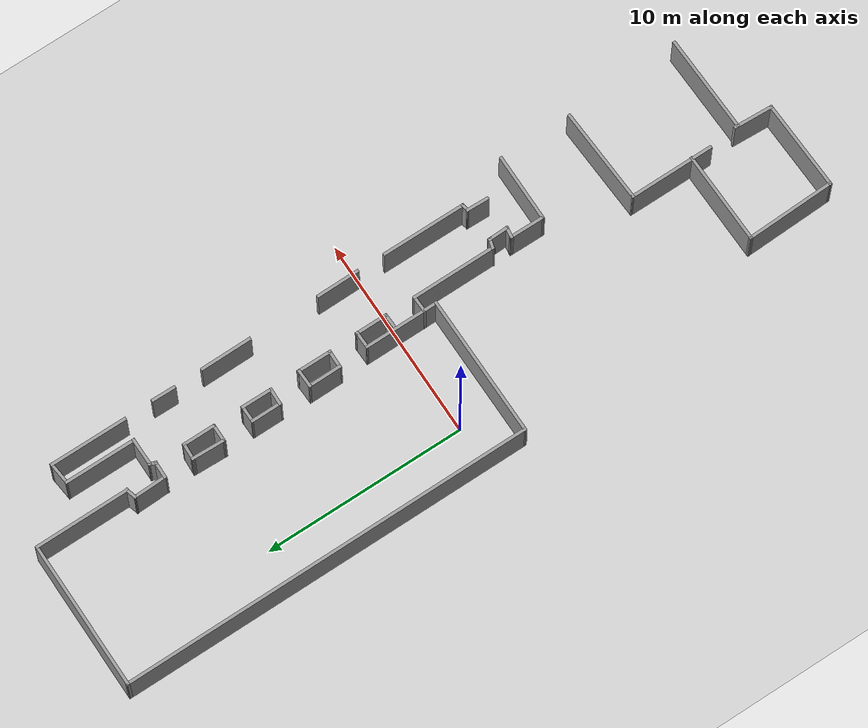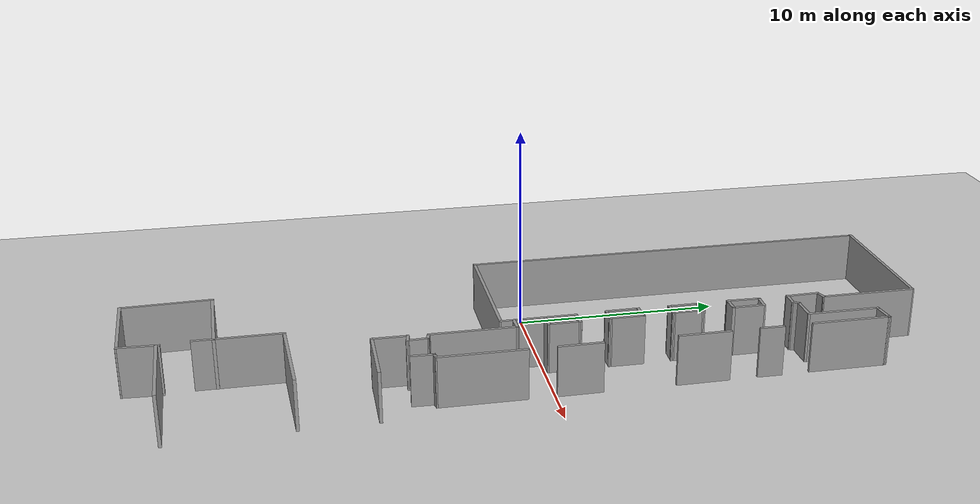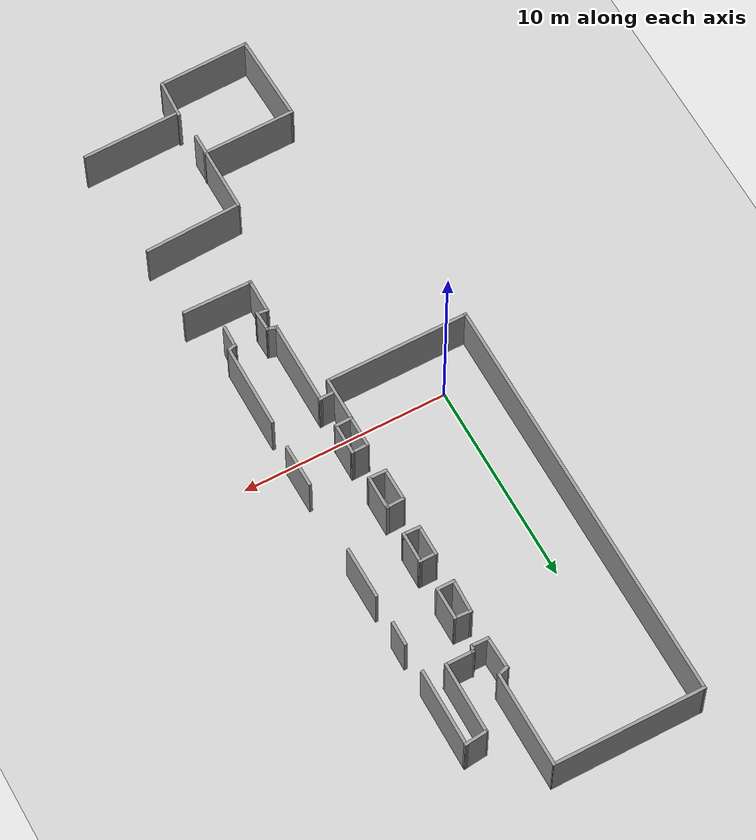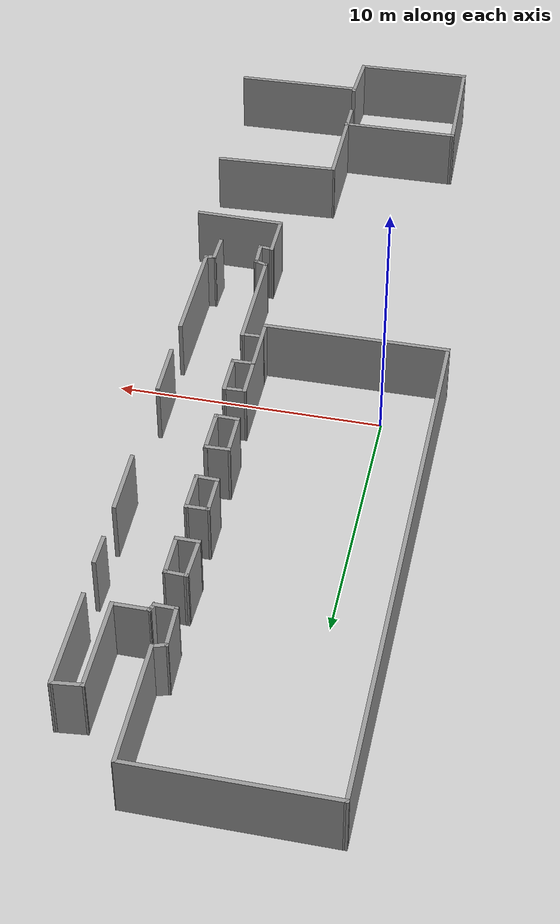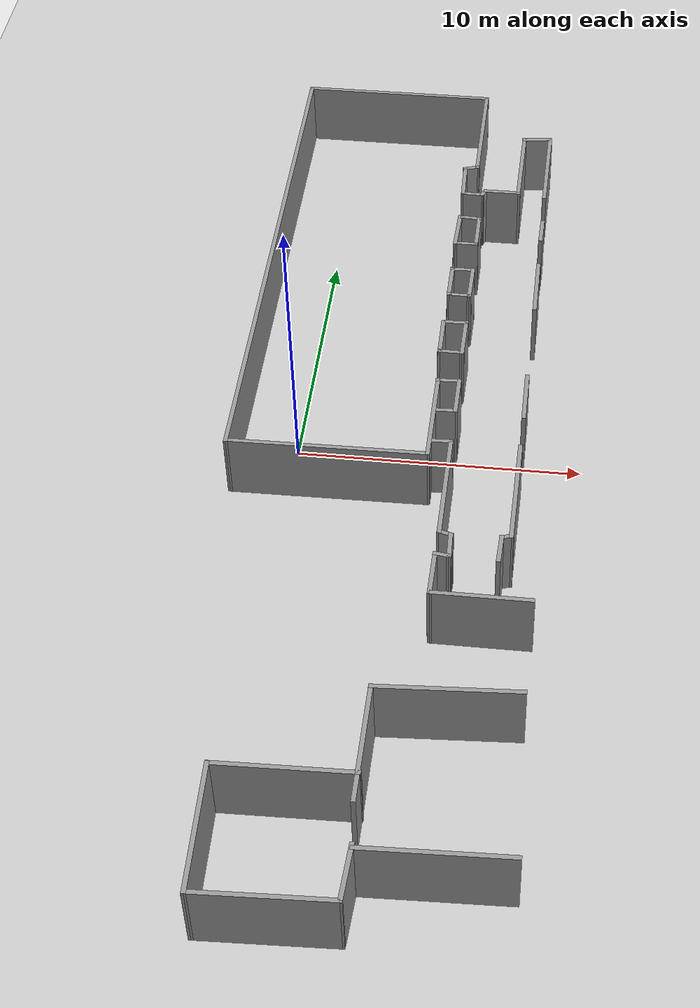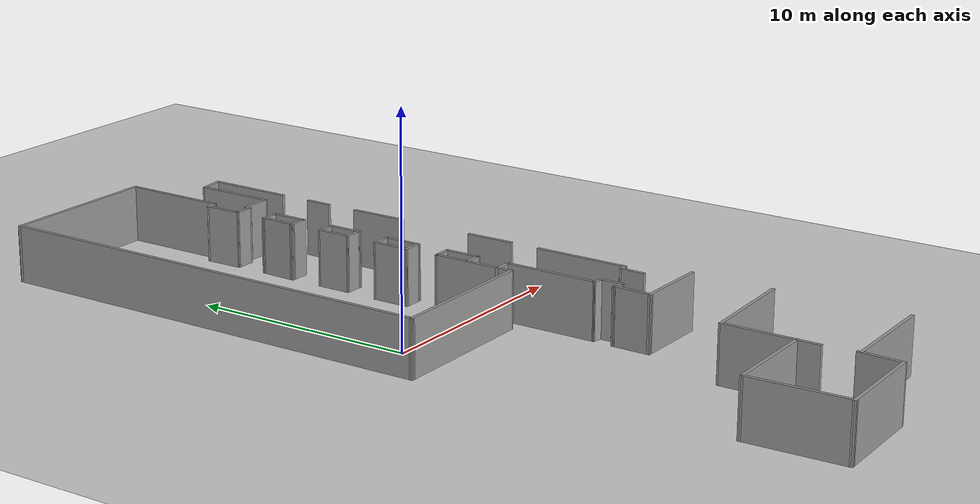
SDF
<sdf version="1.7">
 <world name="default">
  <model name="ground_plane">
   <static>1</static>
   <link name="link">
    <collision name="collision">
     <geometry><plane><normal>0 0 1</normal><size>100 100</size></plane></geometry>
     <surface>
      <contact><collide_bitmask>65535</collide_bitmask></contact>
      <friction><ode><mu>100</mu><mu2>50</mu2></ode></friction>
     </surface>
    </collision>
    <visual name="visual">
     <cast_shadows>0</cast_shadows>
     <geometry><plane><normal>0 0 1</normal><size>100 100</size></plane></geometry>
     <material>
      <script><uri>file://media/materials/scripts/gazebo.material</uri><name>Gazebo/Grey</name></script>
     </material>
    </visual>
   </link>
  </model>
  <model name="lab_world">
   <pose>21.9614 -0.359885 0 0 0 -1.57</pose>
   <link name="Wall_100">
    <collision name="Wall_100_Collision">
     <geometry><box><size>3.75 0.15 2.5</size></box></geometry>
     <pose>0 0 1.25 0 -0 0</pose>
    </collision>
    <visual name="Wall_100_Visual">
     <pose>0 0 1.25 0 -0 0</pose>
     <geometry><box><size>3.75 0.15 2.5</size></box></geometry>
     <material>
      <script><uri>file://media/materials/scripts/gazebo.material</uri><name>Gazebo/Grey</name></script>
      <ambient>1 1 1 1</ambient>
     </material>
     <meta><layer>0</layer></meta>
    </visual>
    <pose>-0.265152 -17.1604 0 0 -0 3.14159</pose>
   </link>
   <link name="Wall_103">
    <collision name="Wall_103_Collision">
     <geometry><box><size>0.89647 0.15 2.5</size></box></geometry>
     <pose>0 0 1.25 0 -0 0</pose>
    </collision>
    <visual name="Wall_103_Visual">
     <pose>0 0 1.25 0 -0 0</pose>
     <geometry><box><size>0.89647 0.15 2.5</size></box></geometry>
     <material>
      <script><uri>file://media/materials/scripts/gazebo.material</uri><name>Gazebo/Grey</name></script>
      <ambient>1 1 1 1</ambient>
     </material>
     <meta><layer>0</layer></meta>
    </visual>
    <pose>-2.07624 -16.7874 0 0 -0 1.6005</pose>
   </link>
   <link name="Wall_104">
    <collision name="Wall_104_Collision">
     <geometry><box><size>1.6335 0.15 2.5</size></box></geometry>
     <pose>0 0 1.25 0 -0 0</pose>
    </collision>
    <visual name="Wall_104_Visual">
     <pose>0 0 1.25 0 -0 0</pose>
     <geometry><box><size>1.6335 0.15 2.5</size></box></geometry>
     <material>
      <script><uri>file://media/materials/scripts/gazebo.material</uri><name>Gazebo/Grey</name></script>
      <ambient>1 1 1 1</ambient>
     </material>
     <meta><layer>0</layer></meta>
    </visual>
    <pose>-1.34557 -16.4143 0 0 -0 0</pose>
   </link>
   <link name="Wall_105">
    <collision name="Wall_105_Collision">
     <geometry><box><size>0.874865 0.15 2.5</size></box></geometry>
     <pose>0 0 1.25 0 -0 0</pose>
    </collision>
    <visual name="Wall_105_Visual">
     <pose>0 0 1.25 0 -0 0</pose>
     <geometry><box><size>0.874865 0.15 2.5</size></box></geometry>
     <material>
      <script><uri>file://media/materials/scripts/gazebo.material</uri><name>Gazebo/Grey</name></script>
      <ambient>1 1 1 1</ambient>
     </material>
     <meta><layer>0</layer></meta>
    </visual>
    <pose>-0.592319 -16.7765 0 0 -0 -1.53906</pose>
   </link>
   <link name="Wall_107">
    <collision name="Wall_107_Collision">
     <geometry><box><size>0.886808 0.15 2.5</size></box></geometry>
     <pose>0 0 1.25 0 -0 0</pose>
    </collision>
    <visual name="Wall_107_Visual">
     <pose>0 0 1.25 0 -0 0</pose>
     <geometry><box><size>0.886808 0.15 2.5</size></box></geometry>
     <material>
      <script><uri>file://media/materials/scripts/gazebo.material</uri><name>Gazebo/Grey</name></script>
      <ambient>1 1 1 1</ambient>
     </material>
     <meta><layer>0</layer></meta>
    </visual>
    <pose>0.902681 -16.7938 0 0 -0 1.60204</pose>
   </link>
   <link name="Wall_109">
    <collision name="Wall_109_Collision">
     <geometry><box><size>4.25 0.15 2.5</size></box></geometry>
     <pose>0 0 1.25 0 -0 0</pose>
    </collision>
    <visual name="Wall_109_Visual">
     <pose>0 0 1.25 0 -0 0</pose>
     <geometry><box><size>4.25 0.15 2.5</size></box></geometry>
     <material>
      <script><uri>file://media/materials/scripts/gazebo.material</uri><name>Gazebo/Grey</name></script>
      <ambient>1 1 1 1</ambient>
     </material>
     <meta><layer>0</layer></meta>
    </visual>
    <pose>2.94118 -16.4258 0 0 -0 0</pose>
   </link>
   <link name="Wall_110">
    <collision name="Wall_110_Collision">
     <geometry><box><size>0.554127 0.15 2.5</size></box></geometry>
     <pose>0 0 1.25 0 -0 0</pose>
    </collision>
    <visual name="Wall_110_Visual">
     <pose>0 0 1.25 0 -0 0</pose>
     <geometry><box><size>0.554127 0.15 2.5</size></box></geometry>
     <material>
      <script><uri>file://media/materials/scripts/gazebo.material</uri><name>Gazebo/Grey</name></script>
      <ambient>1 1 1 1</ambient>
     </material>
     <meta><layer>0</layer></meta>
    </visual>
    <pose>5.04604 -16.2313 0 0 -0 1.29585</pose>
   </link>
   <link name="Wall_111">
    <collision name="Wall_111_Collision">
     <geometry><box><size>1.06265 0.15 2.5</size></box></geometry>
     <pose>0 0 1.25 0 -0 0</pose>
    </collision>
    <visual name="Wall_111_Visual">
     <pose>0 0 1.25 0 -0 0</pose>
     <geometry><box><size>1.06265 0.15 2.5</size></box></geometry>
     <material>
      <script><uri>file://media/materials/scripts/gazebo.material</uri><name>Gazebo/Grey</name></script>
      <ambient>1 1 1 1</ambient>
     </material>
     <meta><layer>0</layer></meta>
    </visual>
    <pose>5.55716 -16.0216 0 0 -0 0.033321</pose>
   </link>
   <link name="Wall_112">
    <collision name="Wall_112_Collision">
     <geometry><box><size>0.6103 0.15 2.5</size></box></geometry>
     <pose>0 0 1.25 0 -0 0</pose>
    </collision>
    <visual name="Wall_112_Visual">
     <pose>0 0 1.25 0 -0 0</pose>
     <geometry><box><size>0.6103 0.15 2.5</size></box></geometry>
     <material>
      <script><uri>file://media/materials/scripts/gazebo.material</uri><name>Gazebo/Grey</name></script>
      <ambient>1 1 1 1</ambient>
     </material>
     <meta><layer>0</layer></meta>
    </visual>
    <pose>5.98301 -16.2346 0 0 -0 -1.70335</pose>
   </link>
   <link name="Wall_113">
    <collision name="Wall_113_Collision">
     <geometry><box><size>1.77741 0.15 2.5</size></box></geometry>
     <pose>0 0 1.25 0 -0 0</pose>
    </collision>
    <visual name="Wall_113_Visual">
     <pose>0 0 1.25 0 -0 0</pose>
     <geometry><box><size>1.77741 0.15 2.5</size></box></geometry>
     <material>
      <script><uri>file://media/materials/scripts/gazebo.material</uri><name>Gazebo/Grey</name></script>
      <ambient>1 1 1 1</ambient>
     </material>
     <meta><layer>0</layer></meta>
    </visual>
    <pose>6.76626 -16.4703 0 0 -0 -0.009346</pose>
   </link>
   <link name="Wall_114">
    <collision name="Wall_114_Collision">
     <geometry><box><size>3.41733 0.15 2.5</size></box></geometry>
     <pose>0 0 1.25 0 -0 0</pose>
    </collision>
    <visual name="Wall_114_Visual">
     <pose>0 0 1.25 0 -0 0</pose>
     <geometry><box><size>3.41733 0.15 2.5</size></box></geometry>
     <material>
      <script><uri>file://media/materials/scripts/gazebo.material</uri><name>Gazebo/Grey</name></script>
      <ambient>1 1 1 1</ambient>
     </material>
     <meta><layer>0</layer></meta>
    </visual>
    <pose>7.58753 -14.8443 0 0 -0 1.56614</pose>
   </link>
   <link name="Wall_116">
    <collision name="Wall_116_Collision">
     <geometry><box><size>4.79192 0.15 2.5</size></box></geometry>
     <pose>0 0 1.25 0 -0 0</pose>
    </collision>
    <visual name="Wall_116_Visual">
     <pose>0 0 1.25 0 -0 0</pose>
     <geometry><box><size>4.79192 0.15 2.5</size></box></geometry>
     <material>
      <script><uri>file://media/materials/scripts/gazebo.material</uri><name>Gazebo/Grey</name></script>
      <ambient>1 1 1 1</ambient>
     </material>
     <meta><layer>0</layer></meta>
    </visual>
    <pose>11.3114 -15.5439 0 0 -0 -1.52067</pose>
   </link>
   <link name="Wall_118">
    <collision name="Wall_118_Collision">
     <geometry><box><size>4.25 0.15 2.5</size></box></geometry>
     <pose>0 0 1.25 0 -0 0</pose>
    </collision>
    <visual name="Wall_118_Visual">
     <pose>0 0 1.25 0 -0 0</pose>
     <geometry><box><size>4.25 0.15 2.5</size></box></geometry>
     <material>
      <script><uri>file://media/materials/scripts/gazebo.material</uri><name>Gazebo/Grey</name></script>
      <ambient>1 1 1 1</ambient>
     </material>
     <meta><layer>0</layer></meta>
    </visual>
    <pose>13.4777 -17.8619 0 0 -0 0</pose>
   </link>
   <link name="Wall_120">
    <collision name="Wall_120_Collision">
     <geometry><box><size>4.6071 0.15 2.5</size></box></geometry>
     <pose>0 0 1.25 0 -0 0</pose>
    </collision>
    <visual name="Wall_120_Visual">
     <pose>0 0 1.25 0 -0 0</pose>
     <geometry><box><size>4.6071 0.15 2.5</size></box></geometry>
     <material>
      <script><uri>file://media/materials/scripts/gazebo.material</uri><name>Gazebo/Grey</name></script>
      <ambient>1 1 1 1</ambient>
     </material>
     <meta><layer>0</layer></meta>
    </visual>
    <pose>14.6216 -20.0596 0 0 -0 -1.55032</pose>
   </link>
   <link name="Wall_121">
    <collision name="Wall_121_Collision">
     <geometry><box><size>4.45625 0.15 2.5</size></box></geometry>
     <pose>0 0 1.25 0 -0 0</pose>
    </collision>
    <visual name="Wall_121_Visual">
     <pose>0 0 1.25 0 -0 0</pose>
     <geometry><box><size>4.45625 0.15 2.5</size></box></geometry>
     <material>
      <script><uri>file://media/materials/scripts/gazebo.material</uri><name>Gazebo/Grey</name></script>
      <ambient>1 1 1 1</ambient>
     </material>
     <meta><layer>0</layer></meta>
    </visual>
    <pose>16.8192 -22.2192 0 0 -0 0.031791</pose>
   </link>
   <link name="Wall_122">
    <collision name="Wall_122_Collision">
     <geometry><box><size>4.50236 0.15 2.5</size></box></geometry>
     <pose>0 0 1.25 0 -0 0</pose>
    </collision>
    <visual name="Wall_122_Visual">
     <pose>0 0 1.25 0 -0 0</pose>
     <geometry><box><size>4.50236 0.15 2.5</size></box></geometry>
     <material>
      <script><uri>file://media/materials/scripts/gazebo.material</uri><name>Gazebo/Grey</name></script>
      <ambient>1 1 1 1</ambient>
     </material>
     <meta><layer>0</layer></meta>
    </visual>
    <pose>18.8952 -19.9759 0 0 -0 1.60575</pose>
   </link>
   <link name="Wall_123">
    <collision name="Wall_123_Collision">
     <geometry><box><size>1.97733 0.15 2.5</size></box></geometry>
     <pose>0 0 1.25 0 -0 0</pose>
    </collision>
    <visual name="Wall_123_Visual">
     <pose>0 0 1.25 0 -0 0</pose>
     <geometry><box><size>1.97733 0.15 2.5</size></box></geometry>
     <material>
      <script><uri>file://media/materials/scripts/gazebo.material</uri><name>Gazebo/Grey</name></script>
      <ambient>1 1 1 1</ambient>
     </material>
     <meta><layer>0</layer></meta>
    </visual>
    <pose>17.9067 -17.7554 0 0 -0 3.09163</pose>
   </link>
   <link name="Wall_125">
    <collision name="Wall_125_Collision">
     <geometry><box><size>4.8515 0.15 2.5</size></box></geometry>
     <pose>0 0 1.25 0 -0 0</pose>
    </collision>
    <visual name="Wall_125_Visual">
     <pose>0 0 1.25 0 -0 0</pose>
     <geometry><box><size>4.8515 0.15 2.5</size></box></geometry>
     <material>
      <script><uri>file://media/materials/scripts/gazebo.material</uri><name>Gazebo/Grey</name></script>
      <ambient>1 1 1 1</ambient>
     </material>
     <meta><layer>0</layer></meta>
    </visual>
    <pose>17.0322 -15.3296 0 0 -0 1.59991</pose>
   </link>
   <link name="Wall_130">
    <collision name="Wall_130_Collision">
     <geometry><box><size>1.15481 0.15 2.5</size></box></geometry>
     <pose>0 0 1.25 0 -0 0</pose>
    </collision>
    <visual name="Wall_130_Visual">
     <pose>0 0 1.25 0 -0 0</pose>
     <geometry><box><size>1.15481 0.15 2.5</size></box></geometry>
     <material>
      <script><uri>file://media/materials/scripts/gazebo.material</uri><name>Gazebo/Grey</name></script>
      <ambient>1 1 1 1</ambient>
     </material>
     <meta><layer>0</layer></meta>
    </visual>
    <pose>5.54195 -14.3943 0 0 -0 3.1113</pose>
   </link>
   <link name="Wall_131">
    <collision name="Wall_131_Collision">
     <geometry><box><size>0.460199 0.15 2.5</size></box></geometry>
     <pose>0 0 1.25 0 -0 0</pose>
    </collision>
    <visual name="Wall_131_Visual">
     <pose>0 0 1.25 0 -0 0</pose>
     <geometry><box><size>0.460199 0.15 2.5</size></box></geometry>
     <material>
      <script><uri>file://media/materials/scripts/gazebo.material</uri><name>Gazebo/Grey</name></script>
      <ambient>1 1 1 1</ambient>
     </material>
     <meta><layer>0</layer></meta>
    </visual>
    <pose>5.00964 -14.227 0 0 -0 1.76819</pose>
   </link>
   <link name="Wall_132">
    <collision name="Wall_132_Collision">
     <geometry><box><size>4.22597 0.15 2.5</size></box></geometry>
     <pose>0 0 1.25 0 -0 0</pose>
    </collision>
    <visual name="Wall_132_Visual">
     <pose>0 0 1.25 0 -0 0</pose>
     <geometry><box><size>4.22597 0.15 2.5</size></box></geometry>
     <material>
      <script><uri>file://media/materials/scripts/gazebo.material</uri><name>Gazebo/Grey</name></script>
      <ambient>1 1 1 1</ambient>
     </material>
     <meta><layer>0</layer></meta>
    </visual>
    <pose>2.94126 -14.0673 0 0 -0 3.13786</pose>
   </link>
   <link name="Wall_137">
    <collision name="Wall_137_Collision">
     <geometry><box><size>2.17282 0.15 2.5</size></box></geometry>
     <pose>0 0 1.25 0 -0 0</pose>
    </collision>
    <visual name="Wall_137_Visual">
     <pose>0 0 1.25 0 -0 0</pose>
     <geometry><box><size>2.17282 0.15 2.5</size></box></geometry>
     <material>
      <script><uri>file://media/materials/scripts/gazebo.material</uri><name>Gazebo/Grey</name></script>
      <ambient>1 1 1 1</ambient>
     </material>
     <meta><layer>0</layer></meta>
    </visual>
    <pose>-1.55293 -14.0521 0 0 -0 -3.13407</pose>
   </link>
   <link name="Wall_148">
    <collision name="Wall_148_Collision">
     <geometry><box><size>1.21475 0.15 2.5</size></box></geometry>
     <pose>0 0 1.25 0 -0 0</pose>
    </collision>
    <visual name="Wall_148_Visual">
     <pose>0 0 1.25 0 -0 0</pose>
     <geometry><box><size>1.21475 0.15 2.5</size></box></geometry>
     <material>
      <script><uri>file://media/materials/scripts/gazebo.material</uri><name>Gazebo/Grey</name></script>
      <ambient>1 1 1 1</ambient>
     </material>
     <meta><layer>0</layer></meta>
    </visual>
    <pose>-10.6097 -14.0513 0 0 -0 -0.015872</pose>
   </link>
   <link name="Wall_152">
    <collision name="Wall_152_Collision">
     <geometry><box><size>2.58359 0.15 2.5</size></box></geometry>
     <pose>0 0 1.25 0 -0 0</pose>
    </collision>
    <visual name="Wall_152_Visual">
     <pose>0 0 1.25 0 -0 0</pose>
     <geometry><box><size>2.58359 0.15 2.5</size></box></geometry>
     <material>
      <script><uri>file://media/materials/scripts/gazebo.material</uri><name>Gazebo/Grey</name></script>
      <ambient>1 1 1 1</ambient>
     </material>
     <meta><layer>0</layer></meta>
    </visual>
    <pose>-7.37028 -14.0369 0 0 -0 0.00625</pose>
   </link>
   <link name="Wall_160">
    <collision name="Wall_160_Collision">
     <geometry><box><size>3.87617 0.15 2.5</size></box></geometry>
     <pose>0 0 1.25 0 -0 0</pose>
    </collision>
    <visual name="Wall_160_Visual">
     <pose>0 0 1.25 0 -0 0</pose>
     <geometry><box><size>3.87617 0.15 2.5</size></box></geometry>
     <material>
      <script><uri>file://media/materials/scripts/gazebo.material</uri><name>Gazebo/Grey</name></script>
      <ambient>1 1 1 1</ambient>
     </material>
     <meta><layer>0</layer></meta>
    </visual>
    <pose>-14.4956 -14.0673 0 0 -0 3.13751</pose>
   </link>
   <link name="Wall_161">
    <collision name="Wall_161_Collision">
     <geometry><box><size>1.17453 0.15 2.5</size></box></geometry>
     <pose>0 0 1.25 0 -0 0</pose>
    </collision>
    <visual name="Wall_161_Visual">
     <pose>0 0 1.25 0 -0 0</pose>
     <geometry><box><size>1.17453 0.15 2.5</size></box></geometry>
     <material>
      <script><uri>file://media/materials/scripts/gazebo.material</uri><name>Gazebo/Grey</name></script>
      <ambient>1 1 1 1</ambient>
     </material>
     <meta><layer>0</layer></meta>
    </visual>
    <pose>-16.3054 -14.5692 0 0 -0 -1.4667</pose>
   </link>
   <link name="Wall_162">
    <collision name="Wall_162_Collision">
     <geometry><box><size>3.58731 0.15 2.5</size></box></geometry>
     <pose>0 0 1.25 0 -0 0</pose>
    </collision>
    <visual name="Wall_162_Visual">
     <pose>0 0 1.25 0 -0 0</pose>
     <geometry><box><size>3.58731 0.15 2.5</size></box></geometry>
     <material>
      <script><uri>file://media/materials/scripts/gazebo.material</uri><name>Gazebo/Grey</name></script>
      <ambient>1 1 1 1</ambient>
     </material>
     <meta><layer>0</layer></meta>
    </visual>
    <pose>-14.5336 -15.0863 0 0 -0 -0.004425</pose>
   </link>
   <link name="Wall_163">
    <collision name="Wall_163_Collision">
     <geometry><box><size>1.4279 0.15 2.5</size></box></geometry>
     <pose>0 0 1.25 0 -0 0</pose>
    </collision>
    <visual name="Wall_163_Visual">
     <pose>0 0 1.25 0 -0 0</pose>
     <geometry><box><size>1.4279 0.15 2.5</size></box></geometry>
     <material>
      <script><uri>file://media/materials/scripts/gazebo.material</uri><name>Gazebo/Grey</name></script>
      <ambient>1 1 1 1</ambient>
     </material>
     <meta><layer>0</layer></meta>
    </visual>
    <pose>-12.815 -15.7327 0 0 -0 -1.5708</pose>
   </link>
   <link name="Wall_164">
    <collision name="Wall_164_Collision">
     <geometry><box><size>0.415609 0.15 2.5</size></box></geometry>
     <pose>0 0 1.25 0 -0 0</pose>
    </collision>
    <visual name="Wall_164_Visual">
     <pose>0 0 1.25 0 -0 0</pose>
     <geometry><box><size>0.415609 0.15 2.5</size></box></geometry>
     <material>
      <script><uri>file://media/materials/scripts/gazebo.material</uri><name>Gazebo/Grey</name></script>
      <ambient>1 1 1 1</ambient>
     </material>
     <meta><layer>0</layer></meta>
    </visual>
    <pose>-12.6933 -16.4247 0 0 -0 -0.41241</pose>
   </link>
   <link name="Wall_165">
    <collision name="Wall_165_Collision">
     <geometry><box><size>0.895384 0.15 2.5</size></box></geometry>
     <pose>0 0 1.25 0 -0 0</pose>
    </collision>
    <visual name="Wall_165_Visual">
     <pose>0 0 1.25 0 -0 0</pose>
     <geometry><box><size>0.895384 0.15 2.5</size></box></geometry>
     <material>
      <script><uri>file://media/materials/scripts/gazebo.material</uri><name>Gazebo/Grey</name></script>
      <ambient>1 1 1 1</ambient>
     </material>
     <meta><layer>0</layer></meta>
    </visual>
    <pose>-12.5793 -16.8505 0 0 -0 -1.5912</pose>
   </link>
   <link name="Wall_166">
    <collision name="Wall_166_Collision">
     <geometry><box><size>1.70249 0.15 2.5</size></box></geometry>
     <pose>0 0 1.25 0 -0 0</pose>
    </collision>
    <visual name="Wall_166_Visual">
     <pose>0 0 1.25 0 -0 0</pose>
     <geometry><box><size>1.70249 0.15 2.5</size></box></geometry>
     <material>
      <script><uri>file://media/materials/scripts/gazebo.material</uri><name>Gazebo/Grey</name></script>
      <ambient>1 1 1 1</ambient>
     </material>
     <meta><layer>0</layer></meta>
    </visual>
    <pose>-13.3625 -17.2459 0 0 -0 -3.11219</pose>
   </link>
   <link name="Wall_167">
    <collision name="Wall_167_Collision">
     <geometry><box><size>0.626352 0.15 2.5</size></box></geometry>
     <pose>0 0 1.25 0 -0 0</pose>
    </collision>
    <visual name="Wall_167_Visual">
     <pose>0 0 1.25 0 -0 0</pose>
     <geometry><box><size>0.626352 0.15 2.5</size></box></geometry>
     <material>
      <script><uri>file://media/materials/scripts/gazebo.material</uri><name>Gazebo/Grey</name></script>
      <ambient>1 1 1 1</ambient>
     </material>
     <meta><layer>0</layer></meta>
    </visual>
    <pose>-14.2066 -17.0406 0 0 -0 1.86225</pose>
   </link>
   <link name="Wall_168">
    <collision name="Wall_168_Collision">
     <geometry><box><size>4.75 0.15 2.5</size></box></geometry>
     <pose>0 0 1.25 0 -0 0</pose>
    </collision>
    <visual name="Wall_168_Visual">
     <pose>0 0 1.25 0 -0 0</pose>
     <geometry><box><size>4.75 0.15 2.5</size></box></geometry>
     <material>
      <script><uri>file://media/materials/scripts/gazebo.material</uri><name>Gazebo/Grey</name></script>
      <ambient>1 1 1 1</ambient>
     </material>
     <meta><layer>0</layer></meta>
    </visual>
    <pose>-16.575 -16.8125 0 0 -0 3.14159</pose>
   </link>
   <link name="Wall_170">
    <collision name="Wall_170_Collision">
     <geometry><box><size>7.3894 0.15 2.5</size></box></geometry>
     <pose>0 0 1.25 0 -0 0</pose>
    </collision>
    <visual name="Wall_170_Visual">
     <pose>0 0 1.25 0 -0 0</pose>
     <geometry><box><size>7.3894 0.15 2.5</size></box></geometry>
     <material>
      <script><uri>file://media/materials/scripts/gazebo.material</uri><name>Gazebo/Grey</name></script>
      <ambient>1 1 1 1</ambient>
     </material>
     <meta><layer>0</layer></meta>
    </visual>
    <pose>-18.8792 -20.4322 0 0 -0 -1.57194</pose>
   </link>
   <link name="Wall_172">
    <collision name="Wall_172_Collision">
     <geometry><box><size>20.6166 0.15 2.5</size></box></geometry>
     <pose>0 0 1.25 0 -0 0</pose>
    </collision>
    <visual name="Wall_172_Visual">
     <pose>0 0 1.25 0 -0 0</pose>
     <geometry><box><size>20.6166 0.15 2.5</size></box></geometry>
     <material>
      <script><uri>file://media/materials/scripts/gazebo.material</uri><name>Gazebo/Grey</name></script>
      <ambient>1 1 1 1</ambient>
     </material>
     <meta><layer>0</layer></meta>
    </visual>
    <pose>-8.65002 -24.0526 0 0 -0 -7.4e-05</pose>
   </link>
   <link name="Wall_173">
    <collision name="Wall_173_Collision">
     <geometry><box><size>7.04311 0.15 2.5</size></box></geometry>
     <pose>0 0 1.25 0 -0 0</pose>
    </collision>
    <visual name="Wall_173_Visual">
     <pose>0 0 1.25 0 -0 0</pose>
     <geometry><box><size>7.04311 0.15 2.5</size></box></geometry>
     <material>
      <script><uri>file://media/materials/scripts/gazebo.material</uri><name>Gazebo/Grey</name></script>
      <ambient>1 1 1 1</ambient>
     </material>
     <meta><layer>0</layer></meta>
    </visual>
    <pose>1.55905 -20.6069 0 0 -0 1.57782</pose>
   </link>
   <link name="Wall_175">
    <collision name="Wall_175_Collision">
     <geometry><box><size>1.67163 0.15 2.5</size></box></geometry>
     <pose>0 0 1.25 0 -0 0</pose>
    </collision>
    <visual name="Wall_175_Visual">
     <pose>0 0 1.25 0 -0 0</pose>
     <geometry><box><size>1.67163 0.15 2.5</size></box></geometry>
     <material>
      <script><uri>file://media/materials/scripts/gazebo.material</uri><name>Gazebo/Grey</name></script>
      <ambient>1 1 1 1</ambient>
     </material>
     <meta><layer>0</layer></meta>
    </visual>
    <pose>-10.3354 -16.4681 0 0 -0 0</pose>
   </link>
   <link name="Wall_176">
    <collision name="Wall_176_Collision">
     <geometry><box><size>0.937053 0.15 2.5</size></box></geometry>
     <pose>0 0 1.25 0 -0 0</pose>
    </collision>
    <visual name="Wall_176_Visual">
     <pose>0 0 1.25 0 -0 0</pose>
     <geometry><box><size>0.937053 0.15 2.5</size></box></geometry>
     <material>
      <script><uri>file://media/materials/scripts/gazebo.material</uri><name>Gazebo/Grey</name></script>
      <ambient>1 1 1 1</ambient>
     </material>
     <meta><layer>0</layer></meta>
    </visual>
    <pose>-9.57456 -16.8616 0 0 -0 -1.5708</pose>
   </link>
   <link name="Wall_177">
    <collision name="Wall_177_Collision">
     <geometry><box><size>1.7075 0.15 2.5</size></box></geometry>
     <pose>0 0 1.25 0 -0 0</pose>
    </collision>
    <visual name="Wall_177_Visual">
     <pose>0 0 1.25 0 -0 0</pose>
     <geometry><box><size>1.7075 0.15 2.5</size></box></geometry>
     <material>
      <script><uri>file://media/materials/scripts/gazebo.material</uri><name>Gazebo/Grey</name></script>
      <ambient>1 1 1 1</ambient>
     </material>
     <meta><layer>0</layer></meta>
    </visual>
    <pose>-10.3529 -17.2289 0 0 -0 3.1079</pose>
   </link>
   <link name="Wall_180">
    <collision name="Wall_180_Collision">
     <geometry><box><size>0.885415 0.15 2.5</size></box></geometry>
     <pose>0 0 1.25 0 -0 0</pose>
    </collision>
    <visual name="Wall_180_Visual">
     <pose>0 0 1.25 0 -0 0</pose>
     <geometry><box><size>0.885415 0.15 2.5</size></box></geometry>
     <material>
      <script><uri>file://media/materials/scripts/gazebo.material</uri><name>Gazebo/Grey</name></script>
      <ambient>1 1 1 1</ambient>
     </material>
     <meta><layer>0</layer></meta>
    </visual>
    <pose>-11.1137 -16.8354 0 0 -0 1.52321</pose>
   </link>
   <link name="Wall_182">
    <collision name="Wall_182_Collision">
     <geometry><box><size>1.59918 0.15 2.5</size></box></geometry>
     <pose>0 0 1.25 0 -0 0</pose>
    </collision>
    <visual name="Wall_182_Visual">
     <pose>0 0 1.25 0 -0 0</pose>
     <geometry><box><size>1.59918 0.15 2.5</size></box></geometry>
     <material>
      <script><uri>file://media/materials/scripts/gazebo.material</uri><name>Gazebo/Grey</name></script>
      <ambient>1 1 1 1</ambient>
     </material>
     <meta><layer>0</layer></meta>
    </visual>
    <pose>-7.34315 -16.4608 0 0 -0 -0.007936</pose>
   </link>
   <link name="Wall_183">
    <collision name="Wall_183_Collision">
     <geometry><box><size>0.897854 0.15 2.5</size></box></geometry>
     <pose>0 0 1.25 0 -0 0</pose>
    </collision>
    <visual name="Wall_183_Visual">
     <pose>0 0 1.25 0 -0 0</pose>
     <geometry><box><size>0.897854 0.15 2.5</size></box></geometry>
     <material>
      <script><uri>file://media/materials/scripts/gazebo.material</uri><name>Gazebo/Grey</name></script>
      <ambient>1 1 1 1</ambient>
     </material>
     <meta><layer>0</layer></meta>
    </visual>
    <pose>-6.63015 -16.8403 0 0 -0 -1.60156</pose>
   </link>
   <link name="Wall_184">
    <collision name="Wall_184_Collision">
     <geometry><box><size>1.5645 0.15 2.5</size></box></geometry>
     <pose>0 0 1.25 0 -0 0</pose>
    </collision>
    <visual name="Wall_184_Visual">
     <pose>0 0 1.25 0 -0 0</pose>
     <geometry><box><size>1.5645 0.15 2.5</size></box></geometry>
     <material>
      <script><uri>file://media/materials/scripts/gazebo.material</uri><name>Gazebo/Grey</name></script>
      <ambient>1 1 1 1</ambient>
     </material>
     <meta><layer>0</layer></meta>
    </visual>
    <pose>-7.3489 -17.214 0 0 -0 3.14159</pose>
   </link>
   <link name="Wall_185">
    <collision name="Wall_185_Collision">
     <geometry><box><size>0.909087 0.15 2.5</size></box></geometry>
     <pose>0 0 1.25 0 -0 0</pose>
    </collision>
    <visual name="Wall_185_Visual">
     <pose>0 0 1.25 0 -0 0</pose>
     <geometry><box><size>0.909087 0.15 2.5</size></box></geometry>
     <material>
      <script><uri>file://media/materials/scripts/gazebo.material</uri><name>Gazebo/Grey</name></script>
      <ambient>1 1 1 1</ambient>
     </material>
     <meta><layer>0</layer></meta>
    </visual>
    <pose>-8.0619 -16.8345 0 0 -0 1.58595</pose>
   </link>
   <link name="Wall_187">
    <collision name="Wall_187_Collision">
     <geometry><box><size>0.94425 0.15 2.5</size></box></geometry>
     <pose>0 0 1.25 0 -0 0</pose>
    </collision>
    <visual name="Wall_187_Visual">
     <pose>0 0 1.25 0 -0 0</pose>
     <geometry><box><size>0.94425 0.15 2.5</size></box></geometry>
     <material>
      <script><uri>file://media/materials/scripts/gazebo.material</uri><name>Gazebo/Grey</name></script>
      <ambient>1 1 1 1</ambient>
     </material>
     <meta><layer>0</layer></meta>
    </visual>
    <pose>-5.12365 -16.8633 0 0 -0 -1.54182</pose>
   </link>
   <link name="Wall_188">
    <collision name="Wall_188_Collision">
     <geometry><box><size>1.70267 0.15 2.5</size></box></geometry>
     <pose>0 0 1.25 0 -0 0</pose>
    </collision>
    <visual name="Wall_188_Visual">
     <pose>0 0 1.25 0 -0 0</pose>
     <geometry><box><size>1.70267 0.15 2.5</size></box></geometry>
     <material>
      <script><uri>file://media/materials/scripts/gazebo.material</uri><name>Gazebo/Grey</name></script>
      <ambient>1 1 1 1</ambient>
     </material>
     <meta><layer>0</layer></meta>
    </visual>
    <pose>-4.3359 -17.2543 0 0 -0 0.007407</pose>
   </link>
   <link name="Wall_189">
    <collision name="Wall_189_Collision">
     <geometry><box><size>0.943583 0.15 2.5</size></box></geometry>
     <pose>0 0 1.25 0 -0 0</pose>
    </collision>
    <visual name="Wall_189_Visual">
     <pose>0 0 1.25 0 -0 0</pose>
     <geometry><box><size>0.943583 0.15 2.5</size></box></geometry>
     <material>
      <script><uri>file://media/materials/scripts/gazebo.material</uri><name>Gazebo/Grey</name></script>
      <ambient>1 1 1 1</ambient>
     </material>
     <meta><layer>0</layer></meta>
    </visual>
    <pose>-3.5539 -16.8518 0 0 -0 1.55631</pose>
   </link>
   <link name="Wall_190">
    <collision name="Wall_190_Collision">
     <geometry><box><size>1.7485 0.15 2.5</size></box></geometry>
     <pose>0 0 1.25 0 -0 0</pose>
    </collision>
    <visual name="Wall_190_Visual">
     <pose>0 0 1.25 0 -0 0</pose>
     <geometry><box><size>1.7485 0.15 2.5</size></box></geometry>
     <material>
      <script><uri>file://media/materials/scripts/gazebo.material</uri><name>Gazebo/Grey</name></script>
      <ambient>1 1 1 1</ambient>
     </material>
     <meta><layer>0</layer></meta>
    </visual>
    <pose>-4.3474 -16.4493 0 0 -0 3.1344</pose>
   </link>
   <static>1</static>
  </model>
 </world>
</sdf>
